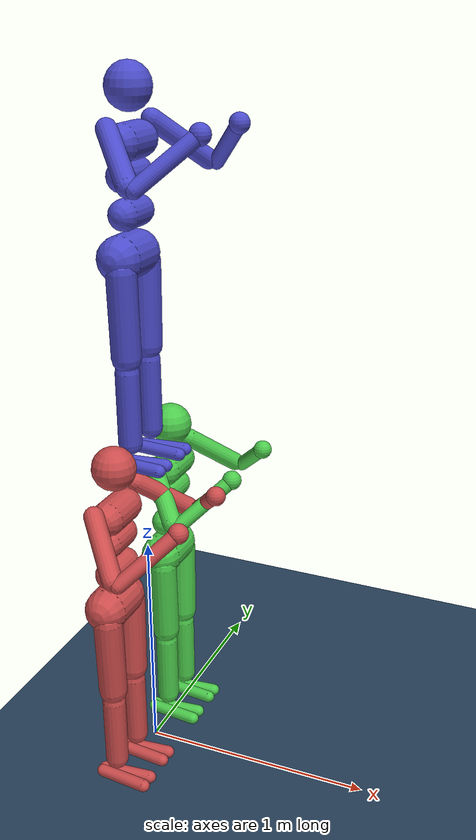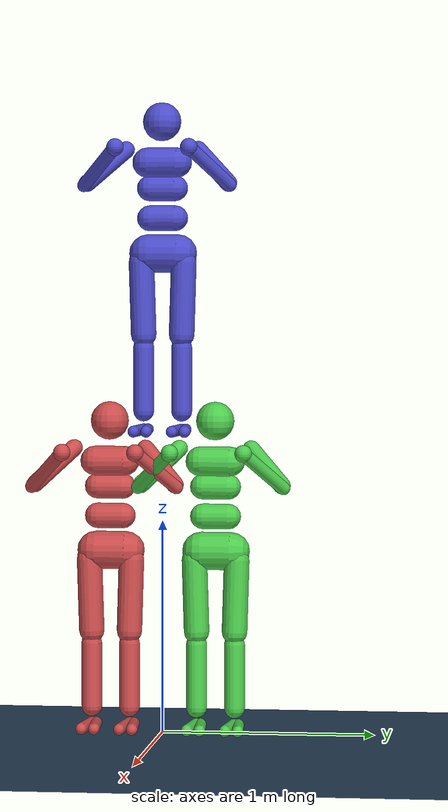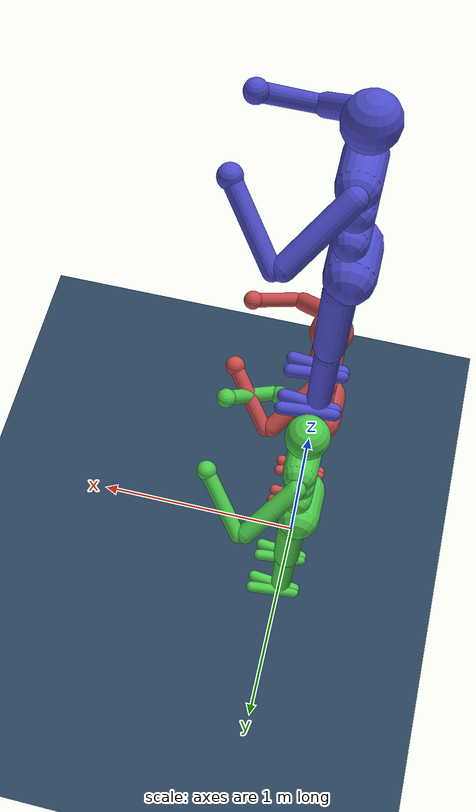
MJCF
<mujoco model="Humanoid Pyramid Touching Shoulders">
  <option timestep="0.005"/>
  <compiler autolimits="true"/>

  <visual>
    <map force="0.1" zfar="30"/>
    <rgba haze="0.15 0.25 0.35 1"/>
    <global offwidth="2560" offheight="1440"/>
  </visual>

  <asset>
    <texture type="skybox" builtin="gradient" rgb1=".3 .5 .7" rgb2="0 0 0" width="32" height="512"/>
    <texture name="grid" type="2d" builtin="checker" width="512" height="512" rgb1=".1 .2 .3" rgb2=".2 .3 .4"/>
    <material name="grid" texture="grid" texrepeat="1 1" texuniform="true" reflectance=".2"/>
    <material name="red" rgba="0.8 0.3 0.3 1"/>
    <material name="green" rgba="0.3 0.8 0.3 1"/>
    <material name="blue" rgba="0.3 0.3 0.8 1"/>
  </asset>

  <worldbody>
    <!-- Ground -->
    <geom name="ground" type="plane" size="50 50 0.1" material="grid" condim="3"/>

    <light directional="true" diffuse="0.6 0.6 0.6" specular="0.3 0.3 0.3" pos="0 0 4" dir="0 0 -1"/>
    <light name="spotlight" pos="0 -4 3" dir="0 0.5 -1" diffuse=".8 .8 .8" directional="true"/>

    <!-- Bottom humanoid 1 (Red) - positioned so shoulders touch -->
    <body name="bot1" pos="0 -0.25 1">
      <freejoint name="bot1_root"/>
      <body name="bot1_torso" pos="0 0 0.282">
        <geom name="bot1_torso" fromto="0 -.07 0 0 .07 0" size=".07" type="capsule" material="red"/>
        <geom name="bot1_waist_upper" fromto="-.01 -.06 -.12 -.01 .06 -.12" size=".06" type="capsule" material="red"/>

        <!-- Head -->
        <body name="bot1_head" pos="0 0 .19">
          <geom name="bot1_head" type="sphere" size=".09" material="red"/>
        </body>

        <!-- Right Arm -->
        <body name="bot1_upper_arm_right" pos="0 -.17 .06">
          <joint name="bot1_shoulder1_right" type="hinge" axis="2 1 1" range="-85 60"/>
          <joint name="bot1_shoulder2_right" type="hinge" axis="0 -1 1" range="-85 60"/>
          <geom name="bot1_upper_arm_right" fromto="0 0 0 .16 -.16 -.16" size=".04" type="capsule" material="red"/>
          <body name="bot1_lower_arm_right" pos=".18 -.18 -.18">
            <joint name="bot1_elbow_right" type="hinge" axis="0 -1 1" range="-100 50"/>
            <geom name="bot1_lower_arm_right" fromto=".01 .01 .01 .17 .17 .17" size=".031" type="capsule" material="red"/>
            <body name="bot1_hand_right" pos=".18 .18 .18">
              <geom name="bot1_hand_right" type="sphere" size=".04" material="red"/>
            </body>
          </body>
        </body>

        <!-- Left Arm -->
        <body name="bot1_upper_arm_left" pos="0 .17 .06">
          <joint name="bot1_shoulder1_left" type="hinge" axis="-2 1 -1" range="-85 60"/>
          <joint name="bot1_shoulder2_left" type="hinge" axis="0 -1 -1" range="-85 60"/>
          <geom name="bot1_upper_arm_left" fromto="0 0 0 .16 .16 -.16" size=".04" type="capsule" material="red"/>
          <body name="bot1_lower_arm_left" pos=".18 .18 -.18">
            <joint name="bot1_elbow_left" type="hinge" axis="0 -1 -1" range="-100 50"/>
            <geom name="bot1_lower_arm_left" fromto=".01 -.01 .01 .17 -.17 .17" size=".031" type="capsule" material="red"/>
            <body name="bot1_hand_left" pos=".18 -.18 .18">
              <geom name="bot1_hand_left" type="sphere" size=".04" material="red"/>
            </body>
          </body>
        </body>

        <!-- Lower Body -->
        <body name="bot1_waist_lower" pos="-.01 0 -.26">
          <geom name="bot1_waist_lower" fromto="0 -.06 0 0 .06 0" size=".06" type="capsule" material="red"/>
          <joint name="bot1_abdomen_z" pos="0 0 .065" axis="0 0 1" range="-45 45"/>
          <joint name="bot1_abdomen_y" pos="0 0 .065" axis="0 1 0" range="-75 30"/>
          <body name="bot1_pelvis" pos="0 0 -.165">
            <joint name="bot1_abdomen_x" pos="0 0 .1" axis="1 0 0" range="-35 35"/>
            <geom name="bot1_butt" fromto="-.02 -.07 0 -.02 .07 0" size=".09" type="capsule" material="red"/>

            <!-- Right Leg -->
            <body name="bot1_thigh_right" pos="0 -.1 -.04">
              <joint name="bot1_hip_x_right" type="hinge" axis="1 0 0" range="-30 10"/>
              <joint name="bot1_hip_z_right" type="hinge" axis="0 0 1" range="-60 35"/>
              <joint name="bot1_hip_y_right" type="hinge" axis="0 1 0" range="-150 20"/>
              <geom name="bot1_thigh_right" fromto="0 0 0 0 .01 -.34" size=".06" type="capsule" material="red"/>
              <body name="bot1_shin_right" pos="0 .01 -.4">
                <joint name="bot1_knee_right" type="hinge" axis="0 -1 0" range="-160 2"/>
                <geom name="bot1_shin_right" fromto="0 0 0 0 0 -.3" size=".049" type="capsule" material="red"/>
                <body name="bot1_foot_right" pos="0 0 -.39">
                  <joint name="bot1_ankle_y_right" type="hinge" pos="0 0 .08" axis="0 1 0" range="-50 50"/>
                  <joint name="bot1_ankle_x_right" type="hinge" pos="0 0 .04" axis="1 0 .5" range="-50 50"/>
                  <geom name="bot1_foot1_right" fromto="-.07 -.01 0 .14 -.03 0" size=".027" type="capsule" material="red"/>
                  <geom name="bot1_foot2_right" fromto="-.07 .01 0 .14 .03 0" size=".027" type="capsule" material="red"/>
                </body>
              </body>
            </body>

            <!-- Left Leg -->
            <body name="bot1_thigh_left" pos="0 .1 -.04">
              <joint name="bot1_hip_x_left" type="hinge" axis="-1 0 0" range="-30 10"/>
              <joint name="bot1_hip_z_left" type="hinge" axis="0 0 -1" range="-60 35"/>
              <joint name="bot1_hip_y_left" type="hinge" axis="0 1 0" range="-150 20"/>
              <geom name="bot1_thigh_left" fromto="0 0 0 0 -.01 -.34" size=".06" type="capsule" material="red"/>
              <body name="bot1_shin_left" pos="0 -.01 -.4">
                <joint name="bot1_knee_left" type="hinge" axis="0 -1 0" range="-160 2"/>
                <geom name="bot1_shin_left" fromto="0 0 0 0 0 -.3" size=".049" type="capsule" material="red"/>
                <body name="bot1_foot_left" pos="0 0 -.39">
                  <joint name="bot1_ankle_y_left" type="hinge" pos="0 0 .08" axis="0 1 0" range="-50 50"/>
                  <joint name="bot1_ankle_x_left" type="hinge" pos="0 0 .04" axis="-1 0 -.5" range="-50 50"/>
                  <geom name="bot1_foot1_left" fromto="-.07 -.01 0 .14 -.03 0" size=".027" type="capsule" material="red"/>
                  <geom name="bot1_foot2_left" fromto="-.07 .01 0 .14 .03 0" size=".027" type="capsule" material="red"/>
                </body>
              </body>
            </body>
          </body>
        </body>
      </body>
    </body>

    <!-- Bottom humanoid 2 (Green) - positioned so shoulders touch -->
    <body name="bot2" pos="0 0.25 1">
      <freejoint name="bot2_root"/>
      <body name="bot2_torso" pos="0 0 0.282">
        <geom name="bot2_torso" fromto="0 -.07 0 0 .07 0" size=".07" type="capsule" material="green"/>
        <geom name="bot2_waist_upper" fromto="-.01 -.06 -.12 -.01 .06 -.12" size=".06" type="capsule" material="green"/>

        <!-- Head -->
        <body name="bot2_head" pos="0 0 .19">
          <geom name="bot2_head" type="sphere" size=".09" material="green"/>
        </body>

        <!-- Right Arm -->
        <body name="bot2_upper_arm_right" pos="0 -.17 .06">
          <joint name="bot2_shoulder1_right" type="hinge" axis="2 1 1" range="-85 60"/>
          <joint name="bot2_shoulder2_right" type="hinge" axis="0 -1 1" range="-85 60"/>
          <geom name="bot2_upper_arm_right" fromto="0 0 0 .16 -.16 -.16" size=".04" type="capsule" material="green"/>
          <body name="bot2_lower_arm_right" pos=".18 -.18 -.18">
            <joint name="bot2_elbow_right" type="hinge" axis="0 -1 1" range="-100 50"/>
            <geom name="bot2_lower_arm_right" fromto=".01 .01 .01 .17 .17 .17" size=".031" type="capsule" material="green"/>
            <body name="bot2_hand_right" pos=".18 .18 .18">
              <geom name="bot2_hand_right" type="sphere" size=".04" material="green"/>
            </body>
          </body>
        </body>

        <!-- Left Arm -->
        <body name="bot2_upper_arm_left" pos="0 .17 .06">
          <joint name="bot2_shoulder1_left" type="hinge" axis="-2 1 -1" range="-85 60"/>
          <joint name="bot2_shoulder2_left" type="hinge" axis="0 -1 -1" range="-85 60"/>
          <geom name="bot2_upper_arm_left" fromto="0 0 0 .16 .16 -.16" size=".04" type="capsule" material="green"/>
          <body name="bot2_lower_arm_left" pos=".18 .18 -.18">
            <joint name="bot2_elbow_left" type="hinge" axis="0 -1 -1" range="-100 50"/>
            <geom name="bot2_lower_arm_left" fromto=".01 -.01 .01 .17 -.17 .17" size=".031" type="capsule" material="green"/>
            <body name="bot2_hand_left" pos=".18 -.18 .18">
              <geom name="bot2_hand_left" type="sphere" size=".04" material="green"/>
            </body>
          </body>
        </body>

        <!-- Lower Body -->
        <body name="bot2_waist_lower" pos="-.01 0 -.26">
          <geom name="bot2_waist_lower" fromto="0 -.06 0 0 .06 0" size=".06" type="capsule" material="green"/>
          <joint name="bot2_abdomen_z" pos="0 0 .065" axis="0 0 1" range="-45 45"/>
          <joint name="bot2_abdomen_y" pos="0 0 .065" axis="0 1 0" range="-75 30"/>
          <body name="bot2_pelvis" pos="0 0 -.165">
            <joint name="bot2_abdomen_x" pos="0 0 .1" axis="1 0 0" range="-35 35"/>
            <geom name="bot2_butt" fromto="-.02 -.07 0 -.02 .07 0" size=".09" type="capsule" material="green"/>

            <!-- Right Leg -->
            <body name="bot2_thigh_right" pos="0 -.1 -.04">
              <joint name="bot2_hip_x_right" type="hinge" axis="1 0 0" range="-30 10"/>
              <joint name="bot2_hip_z_right" type="hinge" axis="0 0 1" range="-60 35"/>
              <joint name="bot2_hip_y_right" type="hinge" axis="0 1 0" range="-150 20"/>
              <geom name="bot2_thigh_right" fromto="0 0 0 0 .01 -.34" size=".06" type="capsule" material="green"/>
              <body name="bot2_shin_right" pos="0 .01 -.4">
                <joint name="bot2_knee_right" type="hinge" axis="0 -1 0" range="-160 2"/>
                <geom name="bot2_shin_right" fromto="0 0 0 0 0 -.3" size=".049" type="capsule" material="green"/>
                <body name="bot2_foot_right" pos="0 0 -.39">
                  <joint name="bot2_ankle_y_right" type="hinge" pos="0 0 .08" axis="0 1 0" range="-50 50"/>
                  <joint name="bot2_ankle_x_right" type="hinge" pos="0 0 .04" axis="1 0 .5" range="-50 50"/>
                  <geom name="bot2_foot1_right" fromto="-.07 -.01 0 .14 -.03 0" size=".027" type="capsule" material="green"/>
                  <geom name="bot2_foot2_right" fromto="-.07 .01 0 .14 .03 0" size=".027" type="capsule" material="green"/>
                </body>
              </body>
            </body>

            <!-- Left Leg -->
            <body name="bot2_thigh_left" pos="0 .1 -.04">
              <joint name="bot2_hip_x_left" type="hinge" axis="-1 0 0" range="-30 10"/>
              <joint name="bot2_hip_z_left" type="hinge" axis="0 0 -1" range="-60 35"/>
              <joint name="bot2_hip_y_left" type="hinge" axis="0 1 0" range="-150 20"/>
              <geom name="bot2_thigh_left" fromto="0 0 0 0 -.01 -.34" size=".06" type="capsule" material="green"/>
              <body name="bot2_shin_left" pos="0 -.01 -.4">
                <joint name="bot2_knee_left" type="hinge" axis="0 -1 0" range="-160 2"/>
                <geom name="bot2_shin_left" fromto="0 0 0 0 0 -.3" size=".049" type="capsule" material="green"/>
                <body name="bot2_foot_left" pos="0 0 -.39">
                  <joint name="bot2_ankle_y_left" type="hinge" pos="0 0 .08" axis="0 1 0" range="-50 50"/>
                  <joint name="bot2_ankle_x_left" type="hinge" pos="0 0 .04" axis="-1 0 -.5" range="-50 50"/>
                  <geom name="bot2_foot1_left" fromto="-.07 -.01 0 .14 -.03 0" size=".027" type="capsule" material="green"/>
                  <geom name="bot2_foot2_left" fromto="-.07 .01 0 .14 .03 0" size=".027" type="capsule" material="green"/>
                </body>
              </body>
            </body>
          </body>
        </body>
      </body>
    </body>

    <!-- Top humanoid (Blue) - positioned centered above both base robots -->
    <body name="top" pos="0 0 2.4">
      <freejoint name="top_root"/>
      <body name="top_torso" pos="0 0 0.282">
        <geom name="top_torso" fromto="0 -.07 0 0 .07 0" size=".07" type="capsule" material="blue"/>
        <geom name="top_waist_upper" fromto="-.01 -.06 -.12 -.01 .06 -.12" size=".06" type="capsule" material="blue"/>

        <!-- Head -->
        <body name="top_head" pos="0 0 .19">
          <geom name="top_head" type="sphere" size=".09" material="blue"/>
        </body>

        <!-- Arms -->
        <body name="top_upper_arm_right" pos="0 -.17 .06">
          <joint name="top_shoulder1_right" type="hinge" axis="2 1 1" range="-85 60"/>
          <joint name="top_shoulder2_right" type="hinge" axis="0 -1 1" range="-85 60"/>
          <geom name="top_upper_arm_right" fromto="0 0 0 .16 -.16 -.16" size=".04" type="capsule" material="blue"/>
          <body name="top_lower_arm_right" pos=".18 -.18 -.18">
            <joint name="top_elbow_right" type="hinge" axis="0 -1 1" range="-100 50"/>
            <geom name="top_lower_arm_right" fromto=".01 .01 .01 .17 .17 .17" size=".031" type="capsule" material="blue"/>
            <body name="top_hand_right" pos=".18 .18 .18">
              <geom name="top_hand_right" type="sphere" size=".04" material="blue"/>
            </body>
          </body>
        </body>

        <body name="top_upper_arm_left" pos="0 .17 .06">
          <joint name="top_shoulder1_left" type="hinge" axis="-2 1 -1" range="-85 60"/>
          <joint name="top_shoulder2_left" type="hinge" axis="0 -1 -1" range="-85 60"/>
          <geom name="top_upper_arm_left" fromto="0 0 0 .16 .16 -.16" size=".04" type="capsule" material="blue"/>
          <body name="top_lower_arm_left" pos=".18 .18 -.18">
            <joint name="top_elbow_left" type="hinge" axis="0 -1 -1" range="-100 50"/>
            <geom name="top_lower_arm_left" fromto=".01 -.01 .01 .17 -.17 .17" size=".031" type="capsule" material="blue"/>
            <body name="top_hand_left" pos=".18 -.18 .18">
              <geom name="top_hand_left" type="sphere" size=".04" material="blue"/>
            </body>
          </body>
        </body>

        <!-- Lower Body -->
        <body name="top_waist_lower" pos="-.01 0 -.26">
          <geom name="top_waist_lower" fromto="0 -.06 0 0 .06 0" size=".06" type="capsule" material="blue"/>
          <joint name="top_abdomen_z" pos="0 0 .065" axis="0 0 1" range="-45 45"/>
          <joint name="top_abdomen_y" pos="0 0 .065" axis="0 1 0" range="-75 30"/>
          <body name="top_pelvis" pos="0 0 -.165">
            <joint name="top_abdomen_x" pos="0 0 .1" axis="1 0 0" range="-35 35"/>
            <geom name="top_butt" fromto="-.02 -.07 0 -.02 .07 0" size=".09" type="capsule" material="blue"/>

            <!-- Right Leg -->
            <body name="top_thigh_right" pos="0 -.1 -.04">
              <joint name="top_hip_x_right" type="hinge" axis="1 0 0" range="-30 10"/>
              <joint name="top_hip_z_right" type="hinge" axis="0 0 1" range="-60 35"/>
              <joint name="top_hip_y_right" type="hinge" axis="0 1 0" range="-150 20"/>
              <geom name="top_thigh_right" fromto="0 0 0 0 .01 -.34" size=".06" type="capsule" material="blue"/>
              <body name="top_shin_right" pos="0 .01 -.4">
                <joint name="top_knee_right" type="hinge" axis="0 -1 0" range="-160 2"/>
                <geom name="top_shin_right" fromto="0 0 0 0 0 -.3" size=".049" type="capsule" material="blue"/>
                <body name="top_foot_right" pos="0 0 -.39">
                  <joint name="top_ankle_y_right" type="hinge" pos="0 0 .08" axis="0 1 0" range="-50 50"/>
                  <joint name="top_ankle_x_right" type="hinge" pos="0 0 .04" axis="1 0 .5" range="-50 50"/>
                  <geom name="top_foot1_right" fromto="-.07 -.01 0 .14 -.03 0" size=".027" type="capsule" material="blue"/>
                  <geom name="top_foot2_right" fromto="-.07 .01 0 .14 .03 0" size=".027" type="capsule" material="blue"/>
                </body>
              </body>
            </body>

            <!-- Left Leg -->
            <body name="top_thigh_left" pos="0 .1 -.04">
              <joint name="top_hip_x_left" type="hinge" axis="-1 0 0" range="-30 10"/>
              <joint name="top_hip_z_left" type="hinge" axis="0 0 -1" range="-60 35"/>
              <joint name="top_hip_y_left" type="hinge" axis="0 1 0" range="-150 20"/>
              <geom name="top_thigh_left" fromto="0 0 0 0 -.01 -.34" size=".06" type="capsule" material="blue"/>
              <body name="top_shin_left" pos="0 -.01 -.4">
                <joint name="top_knee_left" type="hinge" axis="0 -1 0" range="-160 2"/>
                <geom name="top_shin_left" fromto="0 0 0 0 0 -.3" size=".049" type="capsule" material="blue"/>
                <body name="top_foot_left" pos="0 0 -.39">
                  <joint name="top_ankle_y_left" type="hinge" pos="0 0 .08" axis="0 1 0" range="-50 50"/>
                  <joint name="top_ankle_x_left" type="hinge" pos="0 0 .04" axis="-1 0 -.5" range="-50 50"/>
                  <geom name="top_foot1_left" fromto="-.07 -.01 0 .14 -.03 0" size=".027" type="capsule" material="blue"/>
                  <geom name="top_foot2_left" fromto="-.07 .01 0 .14 .03 0" size=".027" type="capsule" material="blue"/>
                </body>
              </body>
            </body>
          </body>
        </body>
      </body>
    </body>
  </worldbody>

  <equality>
    <!-- Weld top robot's feet to base robots' shoulders -->
    <weld name="weld_top_left" body1="top_foot_left" body2="bot1_upper_arm_right"
          anchor="0 0 0" solref="0.01 1" solimp="0.9 0.95 0.001"/>
    <weld name="weld_top_right" body1="top_foot_right" body2="bot2_upper_arm_left"
          anchor="0 0 0" solref="0.01 1" solimp="0.9 0.95 0.001"/>
  </equality>

  <!-- COMPLETE ACTUATORS FOR ALL JOINTS -->
  <actuator>
    <!-- Base Humanoid 1 (Red) Actuators -->
    <position name="bot1_abdomen_y" joint="bot1_abdomen_y" kp="100"/>
    <position name="bot1_abdomen_z" joint="bot1_abdomen_z" kp="100"/>
    <position name="bot1_abdomen_x" joint="bot1_abdomen_x" kp="100"/>
    <position name="bot1_hip_x_right" joint="bot1_hip_x_right" kp="100"/>
    <position name="bot1_hip_z_right" joint="bot1_hip_z_right" kp="100"/>
    <position name="bot1_hip_y_right" joint="bot1_hip_y_right" kp="100"/>
    <position name="bot1_knee_right" joint="bot1_knee_right" kp="80"/>
    <position name="bot1_ankle_x_right" joint="bot1_ankle_x_right" kp="50"/>
    <position name="bot1_ankle_y_right" joint="bot1_ankle_y_right" kp="50"/>
    <position name="bot1_hip_x_left" joint="bot1_hip_x_left" kp="100"/>
    <position name="bot1_hip_z_left" joint="bot1_hip_z_left" kp="100"/>
    <position name="bot1_hip_y_left" joint="bot1_hip_y_left" kp="100"/>
    <position name="bot1_knee_left" joint="bot1_knee_left" kp="80"/>
    <position name="bot1_ankle_x_left" joint="bot1_ankle_x_left" kp="50"/>
    <position name="bot1_ankle_y_left" joint="bot1_ankle_y_left" kp="50"/>
    <position name="bot1_shoulder1_right" joint="bot1_shoulder1_right" kp="50"/>
    <position name="bot1_shoulder2_right" joint="bot1_shoulder2_right" kp="50"/>
    <position name="bot1_elbow_right" joint="bot1_elbow_right" kp="50"/>
    <position name="bot1_shoulder1_left" joint="bot1_shoulder1_left" kp="50"/>
    <position name="bot1_shoulder2_left" joint="bot1_shoulder2_left" kp="50"/>
    <position name="bot1_elbow_left" joint="bot1_elbow_left" kp="50"/>

    <!-- Base Humanoid 2 (Green) Actuators -->
    <position name="bot2_abdomen_y" joint="bot2_abdomen_y" kp="100"/>
    <position name="bot2_abdomen_z" joint="bot2_abdomen_z" kp="100"/>
    <position name="bot2_abdomen_x" joint="bot2_abdomen_x" kp="100"/>
    <position name="bot2_hip_x_right" joint="bot2_hip_x_right" kp="100"/>
    <position name="bot2_hip_z_right" joint="bot2_hip_z_right" kp="100"/>
    <position name="bot2_hip_y_right" joint="bot2_hip_y_right" kp="100"/>
    <position name="bot2_knee_right" joint="bot2_knee_right" kp="80"/>
    <position name="bot2_ankle_x_right" joint="bot2_ankle_x_right" kp="50"/>
    <position name="bot2_ankle_y_right" joint="bot2_ankle_y_right" kp="50"/>
    <position name="bot2_hip_x_left" joint="bot2_hip_x_left" kp="100"/>
    <position name="bot2_hip_z_left" joint="bot2_hip_z_left" kp="100"/>
    <position name="bot2_hip_y_left" joint="bot2_hip_y_left" kp="100"/>
    <position name="bot2_knee_left" joint="bot2_knee_left" kp="80"/>
    <position name="bot2_ankle_x_left" joint="bot2_ankle_x_left" kp="50"/>
    <position name="bot2_ankle_y_left" joint="bot2_ankle_y_left" kp="50"/>
    <position name="bot2_shoulder1_right" joint="bot2_shoulder1_right" kp="50"/>
    <position name="bot2_shoulder2_right" joint="bot2_shoulder2_right" kp="50"/>
    <position name="bot2_elbow_right" joint="bot2_elbow_right" kp="50"/>
    <position name="bot2_shoulder1_left" joint="bot2_shoulder1_left" kp="50"/>
    <position name="bot2_shoulder2_left" joint="bot2_shoulder2_left" kp="50"/>
    <position name="bot2_elbow_left" joint="bot2_elbow_left" kp="50"/>

    <!-- Top Humanoid (Blue) Actuators -->
    <position name="top_abdomen_y" joint="top_abdomen_y" kp="100"/>
    <position name="top_abdomen_z" joint="top_abdomen_z" kp="100"/>
    <position name="top_abdomen_x" joint="top_abdomen_x" kp="100"/>
    <position name="top_hip_x_right" joint="top_hip_x_right" kp="100"/>
    <position name="top_hip_z_right" joint="top_hip_z_right" kp="100"/>
    <position name="top_hip_y_right" joint="top_hip_y_right" kp="100"/>
    <position name="top_knee_right" joint="top_knee_right" kp="80"/>
    <position name="top_ankle_x_right" joint="top_ankle_x_right" kp="50"/>
    <position name="top_ankle_y_right" joint="top_ankle_y_right" kp="50"/>
    <position name="top_hip_x_left" joint="top_hip_x_left" kp="100"/>
    <position name="top_hip_z_left" joint="top_hip_z_left" kp="100"/>
    <position name="top_hip_y_left" joint="top_hip_y_left" kp="100"/>
    <position name="top_knee_left" joint="top_knee_left" kp="80"/>
    <position name="top_ankle_x_left" joint="top_ankle_x_left" kp="50"/>
    <position name="top_ankle_y_left" joint="top_ankle_y_left" kp="50"/>
    <position name="top_shoulder1_right" joint="top_shoulder1_right" kp="50"/>
    <position name="top_shoulder2_right" joint="top_shoulder2_right" kp="50"/>
    <position name="top_elbow_right" joint="top_elbow_right" kp="50"/>
    <position name="top_shoulder1_left" joint="top_shoulder1_left" kp="50"/>
    <position name="top_shoulder2_left" joint="top_shoulder2_left" kp="50"/>
    <position name="top_elbow_left" joint="top_elbow_left" kp="50"/>
  </actuator>
</mujoco>
